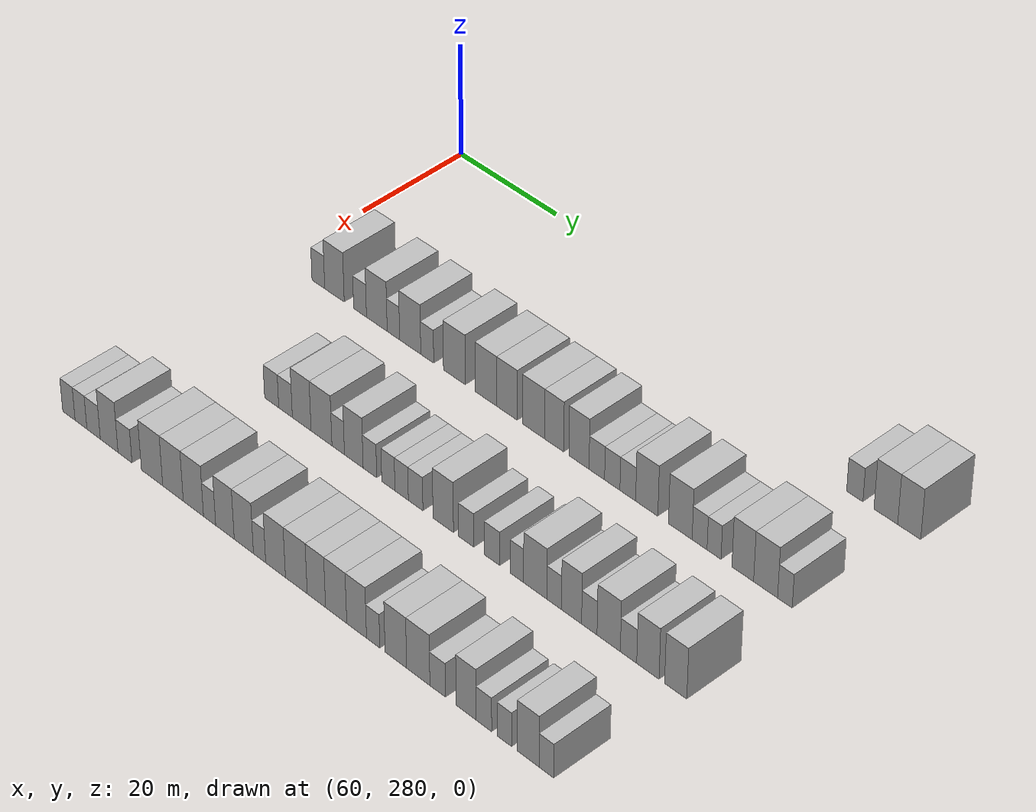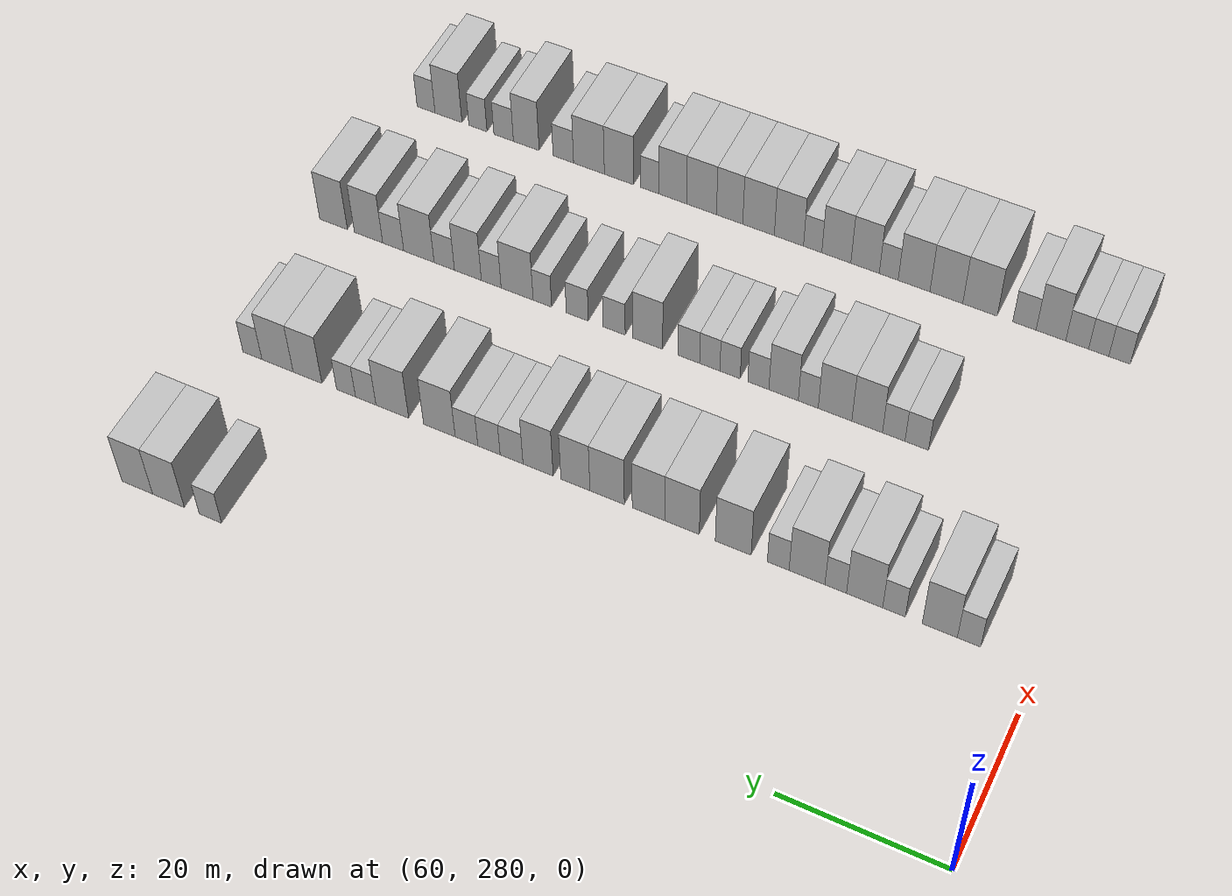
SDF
<sdf version="1.6">
 <world name="default">
  <model name="building_551">
   <static>1</static>
   <pose>69.0000 372.0880 0 0.000000 0.000000 0.000000</pose>
   <link name="link">
    <pose>0 0 3.00 0 0 0</pose>
    <collision name="collision"><geometry><box><size>10.0000 2.9733 6.0000</size></box></geometry></collision>
    <visual name="visual">
     <cast_shadows>0</cast_shadows>
     <geometry><box><size>10.0000 2.9733 6.0000</size></box></geometry>
     <material>
      <script>
       <uri>model://HANNAS_wall/materials/scripts</uri>
       <uri>model://HANNAS_wall/materials/textures</uri>
       <name>vrc/HANNAS_wall</name>
      </script>
     </material>
    </visual>
   </link>
  </model>
  <model name="building_552">
   <static>1</static>
   <pose>69.0000 377.7124 0 0.000000 0.000000 0.000000</pose>
   <link name="link">
    <pose>0 0 4.50 0 0 0</pose>
    <collision name="collision"><geometry><box><size>10.0000 4.2757 9.0000</size></box></geometry></collision>
    <visual name="visual">
     <cast_shadows>0</cast_shadows>
     <geometry><box><size>10.0000 4.2757 9.0000</size></box></geometry>
     <material>
      <script>
       <uri>model://HANNAS_wall/materials/scripts</uri>
       <uri>model://HANNAS_wall/materials/textures</uri>
       <name>vrc/HANNAS_wall</name>
      </script>
     </material>
    </visual>
   </link>
  </model>
  <model name="building_553">
   <static>1</static>
   <pose>69.0000 381.9163 0 0.000000 0.000000 0.000000</pose>
   <link name="link">
    <pose>0 0 4.50 0 0 0</pose>
    <collision name="collision"><geometry><box><size>10.0000 4.1320 9.0000</size></box></geometry></collision>
    <visual name="visual">
     <cast_shadows>0</cast_shadows>
     <geometry><box><size>10.0000 4.1320 9.0000</size></box></geometry>
     <material>
      <script>
       <uri>model://HANNAS_wall/materials/scripts</uri>
       <uri>model://HANNAS_wall/materials/textures</uri>
       <name>vrc/HANNAS_wall</name>
      </script>
     </material>
    </visual>
   </link>
  </model>
  <model name="building_720">
   <static>1</static>
   <pose>91.0000 288.1086 0 0.000000 0.000000 0.000000</pose>
   <link name="link">
    <pose>0 0 3.00 0 0 0</pose>
    <collision name="collision"><geometry><box><size>10.0000 2.7435 6.0000</size></box></geometry></collision>
    <visual name="visual">
     <cast_shadows>0</cast_shadows>
     <geometry><box><size>10.0000 2.7435 6.0000</size></box></geometry>
     <material>
      <script>
       <uri>model://HANNAS_wall/materials/scripts</uri>
       <uri>model://HANNAS_wall/materials/textures</uri>
       <name>vrc/HANNAS_wall</name>
      </script>
     </material>
    </visual>
   </link>
  </model>
  <model name="building_721">
   <static>1</static>
   <pose>91.0000 291.5610 0 0.000000 0.000000 0.000000</pose>
   <link name="link">
    <pose>0 0 4.50 0 0 0</pose>
    <collision name="collision"><geometry><box><size>10.0000 4.1612 9.0000</size></box></geometry></collision>
    <visual name="visual">
     <cast_shadows>0</cast_shadows>
     <geometry><box><size>10.0000 4.1612 9.0000</size></box></geometry>
     <material>
      <script>
       <uri>model://HANNAS_wall/materials/scripts</uri>
       <uri>model://HANNAS_wall/materials/textures</uri>
       <name>vrc/HANNAS_wall</name>
      </script>
     </material>
    </visual>
   </link>
  </model>
  <model name="building_722">
   <static>1</static>
   <pose>91.0000 297.0003 0 0.000000 0.000000 0.000000</pose>
   <link name="link">
    <pose>0 0 3.00 0 0 0</pose>
    <collision name="collision"><geometry><box><size>10.0000 2.7174 6.0000</size></box></geometry></collision>
    <visual name="visual">
     <cast_shadows>0</cast_shadows>
     <geometry><box><size>10.0000 2.7174 6.0000</size></box></geometry>
     <material>
      <script>
       <uri>model://HANNAS_wall/materials/scripts</uri>
       <uri>model://HANNAS_wall/materials/textures</uri>
       <name>vrc/HANNAS_wall</name>
      </script>
     </material>
    </visual>
   </link>
  </model>
  <model name="building_723">
   <static>1</static>
   <pose>91.0000 300.5351 0 0.000000 0.000000 0.000000</pose>
   <link name="link">
    <pose>0 0 4.50 0 0 0</pose>
    <collision name="collision"><geometry><box><size>10.0000 4.3521 9.0000</size></box></geometry></collision>
    <visual name="visual">
     <cast_shadows>0</cast_shadows>
     <geometry><box><size>10.0000 4.3521 9.0000</size></box></geometry>
     <material>
      <script>
       <uri>model://HANNAS_wall/materials/scripts</uri>
       <uri>model://HANNAS_wall/materials/textures</uri>
       <name>vrc/HANNAS_wall</name>
      </script>
     </material>
    </visual>
   </link>
  </model>
  <model name="building_724">
   <static>1</static>
   <pose>91.0000 304.0148 0 0.000000 0.000000 0.000000</pose>
   <link name="link">
    <pose>0 0 3.00 0 0 0</pose>
    <collision name="collision"><geometry><box><size>10.0000 2.6072 6.0000</size></box></geometry></collision>
    <visual name="visual">
     <cast_shadows>0</cast_shadows>
     <geometry><box><size>10.0000 2.6072 6.0000</size></box></geometry>
     <material>
      <script>
       <uri>model://HANNAS_wall/materials/scripts</uri>
       <uri>model://HANNAS_wall/materials/textures</uri>
       <name>vrc/HANNAS_wall</name>
      </script>
     </material>
    </visual>
   </link>
  </model>
  <model name="building_725">
   <static>1</static>
   <pose>91.0000 307.5072 0 0.000000 0.000000 0.000000</pose>
   <link name="link">
    <pose>0 0 4.50 0 0 0</pose>
    <collision name="collision"><geometry><box><size>10.0000 4.3775 9.0000</size></box></geometry></collision>
    <visual name="visual">
     <cast_shadows>0</cast_shadows>
     <geometry><box><size>10.0000 4.3775 9.0000</size></box></geometry>
     <material>
      <script>
       <uri>model://HANNAS_wall/materials/scripts</uri>
       <uri>model://HANNAS_wall/materials/textures</uri>
       <name>vrc/HANNAS_wall</name>
      </script>
     </material>
    </visual>
   </link>
  </model>
  <model name="building_726">
   <static>1</static>
   <pose>91.0000 311.0273 0 0.000000 0.000000 0.000000</pose>
   <link name="link">
    <pose>0 0 3.00 0 0 0</pose>
    <collision name="collision"><geometry><box><size>10.0000 2.6628 6.0000</size></box></geometry></collision>
    <visual name="visual">
     <cast_shadows>0</cast_shadows>
     <geometry><box><size>10.0000 2.6628 6.0000</size></box></geometry>
     <material>
      <script>
       <uri>model://HANNAS_wall/materials/scripts</uri>
       <uri>model://HANNAS_wall/materials/textures</uri>
       <name>vrc/HANNAS_wall</name>
      </script>
     </material>
    </visual>
   </link>
  </model>
  <model name="building_727">
   <static>1</static>
   <pose>91.0000 316.5837 0 0.000000 0.000000 0.000000</pose>
   <link name="link">
    <pose>0 0 4.50 0 0 0</pose>
    <collision name="collision"><geometry><box><size>10.0000 4.4500 9.0000</size></box></geometry></collision>
    <visual name="visual">
     <cast_shadows>0</cast_shadows>
     <geometry><box><size>10.0000 4.4500 9.0000</size></box></geometry>
     <material>
      <script>
       <uri>model://HANNAS_wall/materials/scripts</uri>
       <uri>model://HANNAS_wall/materials/textures</uri>
       <name>vrc/HANNAS_wall</name>
      </script>
     </material>
    </visual>
   </link>
  </model>
  <model name="building_728">
   <static>1</static>
   <pose>91.0000 322.9837 0 0.000000 0.000000 0.000000</pose>
   <link name="link">
    <pose>0 0 4.50 0 0 0</pose>
    <collision name="collision"><geometry><box><size>10.0000 4.3500 9.0000</size></box></geometry></collision>
    <visual name="visual">
     <cast_shadows>0</cast_shadows>
     <geometry><box><size>10.0000 4.3500 9.0000</size></box></geometry>
     <material>
      <script>
       <uri>model://HANNAS_wall/materials/scripts</uri>
       <uri>model://HANNAS_wall/materials/textures</uri>
       <name>vrc/HANNAS_wall</name>
      </script>
     </material>
    </visual>
   </link>
  </model>
  <model name="building_729">
   <static>1</static>
   <pose>91.0000 327.2072 0 0.000000 0.000000 0.000000</pose>
   <link name="link">
    <pose>0 0 4.50 0 0 0</pose>
    <collision name="collision"><geometry><box><size>10.0000 4.0969 9.0000</size></box></geometry></collision>
    <visual name="visual">
     <cast_shadows>0</cast_shadows>
     <geometry><box><size>10.0000 4.0969 9.0000</size></box></geometry>
     <material>
      <script>
       <uri>model://HANNAS_wall/materials/scripts</uri>
       <uri>model://HANNAS_wall/materials/textures</uri>
       <name>vrc/HANNAS_wall</name>
      </script>
     </material>
    </visual>
   </link>
  </model>
  <model name="building_730">
   <static>1</static>
   <pose>91.0000 332.4565 0 0.000000 0.000000 0.000000</pose>
   <link name="link">
    <pose>0 0 4.50 0 0 0</pose>
    <collision name="collision"><geometry><box><size>10.0000 4.4017 9.0000</size></box></geometry></collision>
    <visual name="visual">
     <cast_shadows>0</cast_shadows>
     <geometry><box><size>10.0000 4.4017 9.0000</size></box></geometry>
     <material>
      <script>
       <uri>model://HANNAS_wall/materials/scripts</uri>
       <uri>model://HANNAS_wall/materials/textures</uri>
       <name>vrc/HANNAS_wall</name>
      </script>
     </material>
    </visual>
   </link>
  </model>
  <model name="building_731">
   <static>1</static>
   <pose>91.0000 336.5260 0 0.000000 0.000000 0.000000</pose>
   <link name="link">
    <pose>0 0 4.50 0 0 0</pose>
    <collision name="collision"><geometry><box><size>10.0000 3.7372 9.0000</size></box></geometry></collision>
    <visual name="visual">
     <cast_shadows>0</cast_shadows>
     <geometry><box><size>10.0000 3.7372 9.0000</size></box></geometry>
     <material>
      <script>
       <uri>model://HANNAS_wall/materials/scripts</uri>
       <uri>model://HANNAS_wall/materials/textures</uri>
       <name>vrc/HANNAS_wall</name>
      </script>
     </material>
    </visual>
   </link>
  </model>
  <model name="building_732">
   <static>1</static>
   <pose>91.0000 341.3567 0 0.000000 0.000000 0.000000</pose>
   <link name="link">
    <pose>0 0 4.50 0 0 0</pose>
    <collision name="collision"><geometry><box><size>10.0000 3.9242 9.0000</size></box></geometry></collision>
    <visual name="visual">
     <cast_shadows>0</cast_shadows>
     <geometry><box><size>10.0000 3.9242 9.0000</size></box></geometry>
     <material>
      <script>
       <uri>model://HANNAS_wall/materials/scripts</uri>
       <uri>model://HANNAS_wall/materials/textures</uri>
       <name>vrc/HANNAS_wall</name>
      </script>
     </material>
    </visual>
   </link>
  </model>
  <model name="building_733">
   <static>1</static>
   <pose>91.0000 344.8164 0 0.000000 0.000000 0.000000</pose>
   <link name="link">
    <pose>0 0 3.00 0 0 0</pose>
    <collision name="collision"><geometry><box><size>10.0000 2.9950 6.0000</size></box></geometry></collision>
    <visual name="visual">
     <cast_shadows>0</cast_shadows>
     <geometry><box><size>10.0000 2.9950 6.0000</size></box></geometry>
     <material>
      <script>
       <uri>model://HANNAS_wall/materials/scripts</uri>
       <uri>model://HANNAS_wall/materials/textures</uri>
       <name>vrc/HANNAS_wall</name>
      </script>
     </material>
    </visual>
   </link>
  </model>
  <model name="building_734">
   <static>1</static>
   <pose>91.0000 347.7823 0 0.000000 0.000000 0.000000</pose>
   <link name="link">
    <pose>0 0 3.00 0 0 0</pose>
    <collision name="collision"><geometry><box><size>10.0000 2.9369 6.0000</size></box></geometry></collision>
    <visual name="visual">
     <cast_shadows>0</cast_shadows>
     <geometry><box><size>10.0000 2.9369 6.0000</size></box></geometry>
     <material>
      <script>
       <uri>model://HANNAS_wall/materials/scripts</uri>
       <uri>model://HANNAS_wall/materials/textures</uri>
       <name>vrc/HANNAS_wall</name>
      </script>
     </material>
    </visual>
   </link>
  </model>
  <model name="building_735">
   <static>1</static>
   <pose>91.0000 350.7458 0 0.000000 0.000000 0.000000</pose>
   <link name="link">
    <pose>0 0 3.00 0 0 0</pose>
    <collision name="collision"><geometry><box><size>10.0000 2.9901 6.0000</size></box></geometry></collision>
    <visual name="visual">
     <cast_shadows>0</cast_shadows>
     <geometry><box><size>10.0000 2.9901 6.0000</size></box></geometry>
     <material>
      <script>
       <uri>model://HANNAS_wall/materials/scripts</uri>
       <uri>model://HANNAS_wall/materials/textures</uri>
       <name>vrc/HANNAS_wall</name>
      </script>
     </material>
    </visual>
   </link>
  </model>
  <model name="building_736">
   <static>1</static>
   <pose>91.0000 354.3429 0 0.000000 0.000000 0.000000</pose>
   <link name="link">
    <pose>0 0 4.50 0 0 0</pose>
    <collision name="collision"><geometry><box><size>10.0000 4.2041 9.0000</size></box></geometry></collision>
    <visual name="visual">
     <cast_shadows>0</cast_shadows>
     <geometry><box><size>10.0000 4.2041 9.0000</size></box></geometry>
     <material>
      <script>
       <uri>model://HANNAS_wall/materials/scripts</uri>
       <uri>model://HANNAS_wall/materials/textures</uri>
       <name>vrc/HANNAS_wall</name>
      </script>
     </material>
    </visual>
   </link>
  </model>
  <model name="building_737">
   <static>1</static>
   <pose>91.0000 360.6515 0 0.000000 0.000000 0.000000</pose>
   <link name="link">
    <pose>0 0 4.50 0 0 0</pose>
    <collision name="collision"><geometry><box><size>10.0000 4.4130 9.0000</size></box></geometry></collision>
    <visual name="visual">
     <cast_shadows>0</cast_shadows>
     <geometry><box><size>10.0000 4.4130 9.0000</size></box></geometry>
     <material>
      <script>
       <uri>model://HANNAS_wall/materials/scripts</uri>
       <uri>model://HANNAS_wall/materials/textures</uri>
       <name>vrc/HANNAS_wall</name>
      </script>
     </material>
    </visual>
   </link>
  </model>
  <model name="building_738">
   <static>1</static>
   <pose>91.0000 364.2437 0 0.000000 0.000000 0.000000</pose>
   <link name="link">
    <pose>0 0 3.00 0 0 0</pose>
    <collision name="collision"><geometry><box><size>10.0000 2.7716 6.0000</size></box></geometry></collision>
    <visual name="visual">
     <cast_shadows>0</cast_shadows>
     <geometry><box><size>10.0000 2.7716 6.0000</size></box></geometry>
     <material>
      <script>
       <uri>model://HANNAS_wall/materials/scripts</uri>
       <uri>model://HANNAS_wall/materials/textures</uri>
       <name>vrc/HANNAS_wall</name>
      </script>
     </material>
    </visual>
   </link>
  </model>
  <model name="building_739">
   <static>1</static>
   <pose>91.0000 366.9159 0 0.000000 0.000000 0.000000</pose>
   <link name="link">
    <pose>0 0 3.00 0 0 0</pose>
    <collision name="collision"><geometry><box><size>10.0000 2.5727 6.0000</size></box></geometry></collision>
    <visual name="visual">
     <cast_shadows>0</cast_shadows>
     <geometry><box><size>10.0000 2.5727 6.0000</size></box></geometry>
     <material>
      <script>
       <uri>model://HANNAS_wall/materials/scripts</uri>
       <uri>model://HANNAS_wall/materials/textures</uri>
       <name>vrc/HANNAS_wall</name>
      </script>
     </material>
    </visual>
   </link>
  </model>
  <model name="building_740">
   <static>1</static>
   <pose>91.0000 372.1817 0 0.000000 0.000000 0.000000</pose>
   <link name="link">
    <pose>0 0 4.50 0 0 0</pose>
    <collision name="collision"><geometry><box><size>10.0000 3.9588 9.0000</size></box></geometry></collision>
    <visual name="visual">
     <cast_shadows>0</cast_shadows>
     <geometry><box><size>10.0000 3.9588 9.0000</size></box></geometry>
     <material>
      <script>
       <uri>model://HANNAS_wall/materials/scripts</uri>
       <uri>model://HANNAS_wall/materials/textures</uri>
       <name>vrc/HANNAS_wall</name>
      </script>
     </material>
    </visual>
   </link>
  </model>
  <model name="building_741">
   <static>1</static>
   <pose>91.0000 376.3305 0 0.000000 0.000000 0.000000</pose>
   <link name="link">
    <pose>0 0 4.50 0 0 0</pose>
    <collision name="collision"><geometry><box><size>10.0000 4.3389 9.0000</size></box></geometry></collision>
    <visual name="visual">
     <cast_shadows>0</cast_shadows>
     <geometry><box><size>10.0000 4.3389 9.0000</size></box></geometry>
     <material>
      <script>
       <uri>model://HANNAS_wall/materials/scripts</uri>
       <uri>model://HANNAS_wall/materials/textures</uri>
       <name>vrc/HANNAS_wall</name>
      </script>
     </material>
    </visual>
   </link>
  </model>
  <model name="building_742">
   <static>1</static>
   <pose>91.0000 379.8189 0 0.000000 0.000000 0.000000</pose>
   <link name="link">
    <pose>0 0 3.00 0 0 0</pose>
    <collision name="collision"><geometry><box><size>10.0000 2.6379 6.0000</size></box></geometry></collision>
    <visual name="visual">
     <cast_shadows>0</cast_shadows>
     <geometry><box><size>10.0000 2.6379 6.0000</size></box></geometry>
     <material>
      <script>
       <uri>model://HANNAS_wall/materials/scripts</uri>
       <uri>model://HANNAS_wall/materials/textures</uri>
       <name>vrc/HANNAS_wall</name>
      </script>
     </material>
    </visual>
   </link>
  </model>
  <model name="building_910">
   <static>1</static>
   <pose>113.0000 303.0188 0 0.000000 0.000000 0.000000</pose>
   <link name="link">
    <pose>0 0 3.00 0 0 0</pose>
    <collision name="collision"><geometry><box><size>10.0000 2.9474 6.0000</size></box></geometry></collision>
    <visual name="visual">
     <cast_shadows>0</cast_shadows>
     <geometry><box><size>10.0000 2.9474 6.0000</size></box></geometry>
     <material>
      <script>
       <uri>model://HANNAS_wall/materials/scripts</uri>
       <uri>model://HANNAS_wall/materials/textures</uri>
       <name>vrc/HANNAS_wall</name>
      </script>
     </material>
    </visual>
   </link>
  </model>
  <model name="building_911">
   <static>1</static>
   <pose>113.0000 305.9143 0 0.000000 0.000000 0.000000</pose>
   <link name="link">
    <pose>0 0 3.00 0 0 0</pose>
    <collision name="collision"><geometry><box><size>10.0000 2.8436 6.0000</size></box></geometry></collision>
    <visual name="visual">
     <cast_shadows>0</cast_shadows>
     <geometry><box><size>10.0000 2.8436 6.0000</size></box></geometry>
     <material>
      <script>
       <uri>model://HANNAS_wall/materials/scripts</uri>
       <uri>model://HANNAS_wall/materials/textures</uri>
       <name>vrc/HANNAS_wall</name>
      </script>
     </material>
    </visual>
   </link>
  </model>
  <model name="building_912">
   <static>1</static>
   <pose>113.0000 309.2761 0 0.000000 0.000000 0.000000</pose>
   <link name="link">
    <pose>0 0 4.50 0 0 0</pose>
    <collision name="collision"><geometry><box><size>10.0000 3.8799 9.0000</size></box></geometry></collision>
    <visual name="visual">
     <cast_shadows>0</cast_shadows>
     <geometry><box><size>10.0000 3.8799 9.0000</size></box></geometry>
     <material>
      <script>
       <uri>model://HANNAS_wall/materials/scripts</uri>
       <uri>model://HANNAS_wall/materials/textures</uri>
       <name>vrc/HANNAS_wall</name>
      </script>
     </material>
    </visual>
   </link>
  </model>
  <model name="building_913">
   <static>1</static>
   <pose>113.0000 313.3611 0 0.000000 0.000000 0.000000</pose>
   <link name="link">
    <pose>0 0 4.50 0 0 0</pose>
    <collision name="collision"><geometry><box><size>10.0000 4.2902 9.0000</size></box></geometry></collision>
    <visual name="visual">
     <cast_shadows>0</cast_shadows>
     <geometry><box><size>10.0000 4.2902 9.0000</size></box></geometry>
     <material>
      <script>
       <uri>model://HANNAS_wall/materials/scripts</uri>
       <uri>model://HANNAS_wall/materials/textures</uri>
       <name>vrc/HANNAS_wall</name>
      </script>
     </material>
    </visual>
   </link>
  </model>
  <model name="building_914">
   <static>1</static>
   <pose>113.0000 316.7859 0 0.000000 0.000000 0.000000</pose>
   <link name="link">
    <pose>0 0 3.00 0 0 0</pose>
    <collision name="collision"><geometry><box><size>10.0000 2.5594 6.0000</size></box></geometry></collision>
    <visual name="visual">
     <cast_shadows>0</cast_shadows>
     <geometry><box><size>10.0000 2.5594 6.0000</size></box></geometry>
     <material>
      <script>
       <uri>model://HANNAS_wall/materials/scripts</uri>
       <uri>model://HANNAS_wall/materials/textures</uri>
       <name>vrc/HANNAS_wall</name>
      </script>
     </material>
    </visual>
   </link>
  </model>
  <model name="building_915">
   <static>1</static>
   <pose>113.0000 319.9630 0 0.000000 0.000000 0.000000</pose>
   <link name="link">
    <pose>0 0 4.50 0 0 0</pose>
    <collision name="collision"><geometry><box><size>10.0000 3.7948 9.0000</size></box></geometry></collision>
    <visual name="visual">
     <cast_shadows>0</cast_shadows>
     <geometry><box><size>10.0000 3.7948 9.0000</size></box></geometry>
     <material>
      <script>
       <uri>model://HANNAS_wall/materials/scripts</uri>
       <uri>model://HANNAS_wall/materials/textures</uri>
       <name>vrc/HANNAS_wall</name>
      </script>
     </material>
    </visual>
   </link>
  </model>
  <model name="building_916">
   <static>1</static>
   <pose>113.0000 323.2303 0 0.000000 0.000000 0.000000</pose>
   <link name="link">
    <pose>0 0 3.00 0 0 0</pose>
    <collision name="collision"><geometry><box><size>10.0000 2.7396 6.0000</size></box></geometry></collision>
    <visual name="visual">
     <cast_shadows>0</cast_shadows>
     <geometry><box><size>10.0000 2.7396 6.0000</size></box></geometry>
     <material>
      <script>
       <uri>model://HANNAS_wall/materials/scripts</uri>
       <uri>model://HANNAS_wall/materials/textures</uri>
       <name>vrc/HANNAS_wall</name>
      </script>
     </material>
    </visual>
   </link>
  </model>
  <model name="building_917">
   <static>1</static>
   <pose>113.0000 326.9253 0 0.000000 0.000000 0.000000</pose>
   <link name="link">
    <pose>0 0 3.00 0 0 0</pose>
    <collision name="collision"><geometry><box><size>10.0000 2.6505 6.0000</size></box></geometry></collision>
    <visual name="visual">
     <cast_shadows>0</cast_shadows>
     <geometry><box><size>10.0000 2.6505 6.0000</size></box></geometry>
     <material>
      <script>
       <uri>model://HANNAS_wall/materials/scripts</uri>
       <uri>model://HANNAS_wall/materials/textures</uri>
       <name>vrc/HANNAS_wall</name>
      </script>
     </material>
    </visual>
   </link>
  </model>
  <model name="building_918">
   <static>1</static>
   <pose>113.0000 329.5850 0 0.000000 0.000000 0.000000</pose>
   <link name="link">
    <pose>0 0 3.00 0 0 0</pose>
    <collision name="collision"><geometry><box><size>10.0000 2.6688 6.0000</size></box></geometry></collision>
    <visual name="visual">
     <cast_shadows>0</cast_shadows>
     <geometry><box><size>10.0000 2.6688 6.0000</size></box></geometry>
     <material>
      <script>
       <uri>model://HANNAS_wall/materials/scripts</uri>
       <uri>model://HANNAS_wall/materials/textures</uri>
       <name>vrc/HANNAS_wall</name>
      </script>
     </material>
    </visual>
   </link>
  </model>
  <model name="building_919">
   <static>1</static>
   <pose>113.0000 332.3602 0 0.000000 0.000000 0.000000</pose>
   <link name="link">
    <pose>0 0 3.00 0 0 0</pose>
    <collision name="collision"><geometry><box><size>10.0000 2.8817 6.0000</size></box></geometry></collision>
    <visual name="visual">
     <cast_shadows>0</cast_shadows>
     <geometry><box><size>10.0000 2.8817 6.0000</size></box></geometry>
     <material>
      <script>
       <uri>model://HANNAS_wall/materials/scripts</uri>
       <uri>model://HANNAS_wall/materials/textures</uri>
       <name>vrc/HANNAS_wall</name>
      </script>
     </material>
    </visual>
   </link>
  </model>
  <model name="building_920">
   <static>1</static>
   <pose>113.0000 337.8000 0 0.000000 0.000000 0.000000</pose>
   <link name="link">
    <pose>0 0 4.50 0 0 0</pose>
    <collision name="collision"><geometry><box><size>10.0000 3.9978 9.0000</size></box></geometry></collision>
    <visual name="visual">
     <cast_shadows>0</cast_shadows>
     <geometry><box><size>10.0000 3.9978 9.0000</size></box></geometry>
     <material>
      <script>
       <uri>model://HANNAS_wall/materials/scripts</uri>
       <uri>model://HANNAS_wall/materials/textures</uri>
       <name>vrc/HANNAS_wall</name>
      </script>
     </material>
    </visual>
   </link>
  </model>
  <model name="building_921">
   <static>1</static>
   <pose>113.0000 342.2810 0 0.000000 0.000000 0.000000</pose>
   <link name="link">
    <pose>0 0 3.00 0 0 0</pose>
    <collision name="collision"><geometry><box><size>10.0000 2.9643 6.0000</size></box></geometry></collision>
    <visual name="visual">
     <cast_shadows>0</cast_shadows>
     <geometry><box><size>10.0000 2.9643 6.0000</size></box></geometry>
     <material>
      <script>
       <uri>model://HANNAS_wall/materials/scripts</uri>
       <uri>model://HANNAS_wall/materials/textures</uri>
       <name>vrc/HANNAS_wall</name>
      </script>
     </material>
    </visual>
   </link>
  </model>
  <model name="building_922">
   <static>1</static>
   <pose>113.0000 347.2578 0 0.000000 0.000000 0.000000</pose>
   <link name="link">
    <pose>0 0 3.00 0 0 0</pose>
    <collision name="collision"><geometry><box><size>10.0000 2.9893 6.0000</size></box></geometry></collision>
    <visual name="visual">
     <cast_shadows>0</cast_shadows>
     <geometry><box><size>10.0000 2.9893 6.0000</size></box></geometry>
     <material>
      <script>
       <uri>model://HANNAS_wall/materials/scripts</uri>
       <uri>model://HANNAS_wall/materials/textures</uri>
       <name>vrc/HANNAS_wall</name>
      </script>
     </material>
    </visual>
   </link>
  </model>
  <model name="building_923">
   <static>1</static>
   <pose>113.0000 352.0212 0 0.000000 0.000000 0.000000</pose>
   <link name="link">
    <pose>0 0 3.00 0 0 0</pose>
    <collision name="collision"><geometry><box><size>10.0000 2.5376 6.0000</size></box></geometry></collision>
    <visual name="visual">
     <cast_shadows>0</cast_shadows>
     <geometry><box><size>10.0000 2.5376 6.0000</size></box></geometry>
     <material>
      <script>
       <uri>model://HANNAS_wall/materials/scripts</uri>
       <uri>model://HANNAS_wall/materials/textures</uri>
       <name>vrc/HANNAS_wall</name>
      </script>
     </material>
    </visual>
   </link>
  </model>
  <model name="building_924">
   <static>1</static>
   <pose>113.0000 355.4931 0 0.000000 0.000000 0.000000</pose>
   <link name="link">
    <pose>0 0 4.50 0 0 0</pose>
    <collision name="collision"><geometry><box><size>10.0000 4.4061 9.0000</size></box></geometry></collision>
    <visual name="visual">
     <cast_shadows>0</cast_shadows>
     <geometry><box><size>10.0000 4.4061 9.0000</size></box></geometry>
     <material>
      <script>
       <uri>model://HANNAS_wall/materials/scripts</uri>
       <uri>model://HANNAS_wall/materials/textures</uri>
       <name>vrc/HANNAS_wall</name>
      </script>
     </material>
    </visual>
   </link>
  </model>
  <model name="building_925">
   <static>1</static>
   <pose>113.0000 359.0608 0 0.000000 0.000000 0.000000</pose>
   <link name="link">
    <pose>0 0 3.00 0 0 0</pose>
    <collision name="collision"><geometry><box><size>10.0000 2.7293 6.0000</size></box></geometry></collision>
    <visual name="visual">
     <cast_shadows>0</cast_shadows>
     <geometry><box><size>10.0000 2.7293 6.0000</size></box></geometry>
     <material>
      <script>
       <uri>model://HANNAS_wall/materials/scripts</uri>
       <uri>model://HANNAS_wall/materials/textures</uri>
       <name>vrc/HANNAS_wall</name>
      </script>
     </material>
    </visual>
   </link>
  </model>
  <model name="building_926">
   <static>1</static>
   <pose>113.0000 362.2991 0 0.000000 0.000000 0.000000</pose>
   <link name="link">
    <pose>0 0 4.50 0 0 0</pose>
    <collision name="collision"><geometry><box><size>10.0000 3.7473 9.0000</size></box></geometry></collision>
    <visual name="visual">
     <cast_shadows>0</cast_shadows>
     <geometry><box><size>10.0000 3.7473 9.0000</size></box></geometry>
     <material>
      <script>
       <uri>model://HANNAS_wall/materials/scripts</uri>
       <uri>model://HANNAS_wall/materials/textures</uri>
       <name>vrc/HANNAS_wall</name>
      </script>
     </material>
    </visual>
   </link>
  </model>
  <model name="building_927">
   <static>1</static>
   <pose>113.0000 365.5994 0 0.000000 0.000000 0.000000</pose>
   <link name="link">
    <pose>0 0 3.00 0 0 0</pose>
    <collision name="collision"><geometry><box><size>10.0000 2.8533 6.0000</size></box></geometry></collision>
    <visual name="visual">
     <cast_shadows>0</cast_shadows>
     <geometry><box><size>10.0000 2.8533 6.0000</size></box></geometry>
     <material>
      <script>
       <uri>model://HANNAS_wall/materials/scripts</uri>
       <uri>model://HANNAS_wall/materials/textures</uri>
       <name>vrc/HANNAS_wall</name>
      </script>
     </material>
    </visual>
   </link>
  </model>
  <model name="building_928">
   <static>1</static>
   <pose>113.0000 369.1701 0 0.000000 0.000000 0.000000</pose>
   <link name="link">
    <pose>0 0 4.50 0 0 0</pose>
    <collision name="collision"><geometry><box><size>10.0000 4.2882 9.0000</size></box></geometry></collision>
    <visual name="visual">
     <cast_shadows>0</cast_shadows>
     <geometry><box><size>10.0000 4.2882 9.0000</size></box></geometry>
     <material>
      <script>
       <uri>model://HANNAS_wall/materials/scripts</uri>
       <uri>model://HANNAS_wall/materials/textures</uri>
       <name>vrc/HANNAS_wall</name>
      </script>
     </material>
    </visual>
   </link>
  </model>
  <model name="building_929">
   <static>1</static>
   <pose>113.0000 372.8045 0 0.000000 0.000000 0.000000</pose>
   <link name="link">
    <pose>0 0 3.00 0 0 0</pose>
    <collision name="collision"><geometry><box><size>10.0000 2.9806 6.0000</size></box></geometry></collision>
    <visual name="visual">
     <cast_shadows>0</cast_shadows>
     <geometry><box><size>10.0000 2.9806 6.0000</size></box></geometry>
     <material>
      <script>
       <uri>model://HANNAS_wall/materials/scripts</uri>
       <uri>model://HANNAS_wall/materials/textures</uri>
       <name>vrc/HANNAS_wall</name>
      </script>
     </material>
    </visual>
   </link>
  </model>
  <model name="building_930">
   <static>1</static>
   <pose>113.0000 376.3161 0 0.000000 0.000000 0.000000</pose>
   <link name="link">
    <pose>0 0 4.50 0 0 0</pose>
    <collision name="collision"><geometry><box><size>10.0000 4.0425 9.0000</size></box></geometry></collision>
    <visual name="visual">
     <cast_shadows>0</cast_shadows>
     <geometry><box><size>10.0000 4.0425 9.0000</size></box></geometry>
     <material>
      <script>
       <uri>model://HANNAS_wall/materials/scripts</uri>
       <uri>model://HANNAS_wall/materials/textures</uri>
       <name>vrc/HANNAS_wall</name>
      </script>
     </material>
    </visual>
   </link>
  </model>
  <model name="building_931">
   <static>1</static>
   <pose>113.0000 381.3252 0 0.000000 0.000000 0.000000</pose>
   <link name="link">
    <pose>0 0 4.50 0 0 0</pose>
    <collision name="collision"><geometry><box><size>10.0000 3.9758 9.0000</size></box></geometry></collision>
    <visual name="visual">
     <cast_shadows>0</cast_shadows>
     <geometry><box><size>10.0000 3.9758 9.0000</size></box></geometry>
     <material>
      <script>
       <uri>model://HANNAS_wall/materials/scripts</uri>
       <uri>model://HANNAS_wall/materials/textures</uri>
       <name>vrc/HANNAS_wall</name>
      </script>
     </material>
    </visual>
   </link>
  </model>
  <model name="building_1090">
   <static>1</static>
   <pose>135.0000 285.6781 0 0.000000 0.000000 0.000000</pose>
   <link name="link">
    <pose>0 0 3.00 0 0 0</pose>
    <collision name="collision"><geometry><box><size>10.0000 2.6960 6.0000</size></box></geometry></collision>
    <visual name="visual">
     <cast_shadows>0</cast_shadows>
     <geometry><box><size>10.0000 2.6960 6.0000</size></box></geometry>
     <material>
      <script>
       <uri>model://HANNAS_wall/materials/scripts</uri>
       <uri>model://HANNAS_wall/materials/textures</uri>
       <name>vrc/HANNAS_wall</name>
      </script>
     </material>
    </visual>
   </link>
  </model>
  <model name="building_1091">
   <static>1</static>
   <pose>135.0000 288.3065 0 0.000000 0.000000 0.000000</pose>
   <link name="link">
    <pose>0 0 3.00 0 0 0</pose>
    <collision name="collision"><geometry><box><size>10.0000 2.5607 6.0000</size></box></geometry></collision>
    <visual name="visual">
     <cast_shadows>0</cast_shadows>
     <geometry><box><size>10.0000 2.5607 6.0000</size></box></geometry>
     <material>
      <script>
       <uri>model://HANNAS_wall/materials/scripts</uri>
       <uri>model://HANNAS_wall/materials/textures</uri>
       <name>vrc/HANNAS_wall</name>
      </script>
     </material>
    </visual>
   </link>
  </model>
  <model name="building_1092">
   <static>1</static>
   <pose>135.0000 291.0343 0 0.000000 0.000000 0.000000</pose>
   <link name="link">
    <pose>0 0 3.00 0 0 0</pose>
    <collision name="collision"><geometry><box><size>10.0000 2.8949 6.0000</size></box></geometry></collision>
    <visual name="visual">
     <cast_shadows>0</cast_shadows>
     <geometry><box><size>10.0000 2.8949 6.0000</size></box></geometry>
     <material>
      <script>
       <uri>model://HANNAS_wall/materials/scripts</uri>
       <uri>model://HANNAS_wall/materials/textures</uri>
       <name>vrc/HANNAS_wall</name>
      </script>
     </material>
    </visual>
   </link>
  </model>
  <model name="building_1093">
   <static>1</static>
   <pose>135.0000 294.3743 0 0.000000 0.000000 0.000000</pose>
   <link name="link">
    <pose>0 0 4.50 0 0 0</pose>
    <collision name="collision"><geometry><box><size>10.0000 3.7852 9.0000</size></box></geometry></collision>
    <visual name="visual">
     <cast_shadows>0</cast_shadows>
     <geometry><box><size>10.0000 3.7852 9.0000</size></box></geometry>
     <material>
      <script>
       <uri>model://HANNAS_wall/materials/scripts</uri>
       <uri>model://HANNAS_wall/materials/textures</uri>
       <name>vrc/HANNAS_wall</name>
      </script>
     </material>
    </visual>
   </link>
  </model>
  <model name="building_1094">
   <static>1</static>
   <pose>135.0000 297.7594 0 0.000000 0.000000 0.000000</pose>
   <link name="link">
    <pose>0 0 3.00 0 0 0</pose>
    <collision name="collision"><geometry><box><size>10.0000 2.9850 6.0000</size></box></geometry></collision>
    <visual name="visual">
     <cast_shadows>0</cast_shadows>
     <geometry><box><size>10.0000 2.9850 6.0000</size></box></geometry>
     <material>
      <script>
       <uri>model://HANNAS_wall/materials/scripts</uri>
       <uri>model://HANNAS_wall/materials/textures</uri>
       <name>vrc/HANNAS_wall</name>
      </script>
     </material>
    </visual>
   </link>
  </model>
  <model name="building_1095">
   <static>1</static>
   <pose>135.0000 303.4921 0 0.000000 0.000000 0.000000</pose>
   <link name="link">
    <pose>0 0 4.50 0 0 0</pose>
    <collision name="collision"><geometry><box><size>10.0000 4.4803 9.0000</size></box></geometry></collision>
    <visual name="visual">
     <cast_shadows>0</cast_shadows>
     <geometry><box><size>10.0000 4.4803 9.0000</size></box></geometry>
     <material>
      <script>
       <uri>model://HANNAS_wall/materials/scripts</uri>
       <uri>model://HANNAS_wall/materials/textures</uri>
       <name>vrc/HANNAS_wall</name>
      </script>
     </material>
    </visual>
   </link>
  </model>
  <model name="building_1096">
   <static>1</static>
   <pose>135.0000 307.8776 0 0.000000 0.000000 0.000000</pose>
   <link name="link">
    <pose>0 0 4.50 0 0 0</pose>
    <collision name="collision"><geometry><box><size>10.0000 4.2907 9.0000</size></box></geometry></collision>
    <visual name="visual">
     <cast_shadows>0</cast_shadows>
     <geometry><box><size>10.0000 4.2907 9.0000</size></box></geometry>
     <material>
      <script>
       <uri>model://HANNAS_wall/materials/scripts</uri>
       <uri>model://HANNAS_wall/materials/textures</uri>
       <name>vrc/HANNAS_wall</name>
      </script>
     </material>
    </visual>
   </link>
  </model>
  <model name="building_1097">
   <static>1</static>
   <pose>135.0000 312.1164 0 0.000000 0.000000 0.000000</pose>
   <link name="link">
    <pose>0 0 4.50 0 0 0</pose>
    <collision name="collision"><geometry><box><size>10.0000 4.1867 9.0000</size></box></geometry></collision>
    <visual name="visual">
     <cast_shadows>0</cast_shadows>
     <geometry><box><size>10.0000 4.1867 9.0000</size></box></geometry>
     <material>
      <script>
       <uri>model://HANNAS_wall/materials/scripts</uri>
       <uri>model://HANNAS_wall/materials/textures</uri>
       <name>vrc/HANNAS_wall</name>
      </script>
     </material>
    </visual>
   </link>
  </model>
  <model name="building_1098">
   <static>1</static>
   <pose>135.0000 315.4607 0 0.000000 0.000000 0.000000</pose>
   <link name="link">
    <pose>0 0 3.00 0 0 0</pose>
    <collision name="collision"><geometry><box><size>10.0000 2.5020 6.0000</size></box></geometry></collision>
    <visual name="visual">
     <cast_shadows>0</cast_shadows>
     <geometry><box><size>10.0000 2.5020 6.0000</size></box></geometry>
     <material>
      <script>
       <uri>model://HANNAS_wall/materials/scripts</uri>
       <uri>model://HANNAS_wall/materials/textures</uri>
       <name>vrc/HANNAS_wall</name>
      </script>
     </material>
    </visual>
   </link>
  </model>
  <model name="building_1099">
   <static>1</static>
   <pose>135.0000 318.6043 0 0.000000 0.000000 0.000000</pose>
   <link name="link">
    <pose>0 0 4.50 0 0 0</pose>
    <collision name="collision"><geometry><box><size>10.0000 3.7852 9.0000</size></box></geometry></collision>
    <visual name="visual">
     <cast_shadows>0</cast_shadows>
     <geometry><box><size>10.0000 3.7852 9.0000</size></box></geometry>
     <material>
      <script>
       <uri>model://HANNAS_wall/materials/scripts</uri>
       <uri>model://HANNAS_wall/materials/textures</uri>
       <name>vrc/HANNAS_wall</name>
      </script>
     </material>
    </visual>
   </link>
  </model>
  <model name="building_1100">
   <static>1</static>
   <pose>135.0000 322.4432 0 0.000000 0.000000 0.000000</pose>
   <link name="link">
    <pose>0 0 4.50 0 0 0</pose>
    <collision name="collision"><geometry><box><size>10.0000 3.8926 9.0000</size></box></geometry></collision>
    <visual name="visual">
     <cast_shadows>0</cast_shadows>
     <geometry><box><size>10.0000 3.8926 9.0000</size></box></geometry>
     <material>
      <script>
       <uri>model://HANNAS_wall/materials/scripts</uri>
       <uri>model://HANNAS_wall/materials/textures</uri>
       <name>vrc/HANNAS_wall</name>
      </script>
     </material>
    </visual>
   </link>
  </model>
  <model name="building_1101">
   <static>1</static>
   <pose>135.0000 325.6242 0 0.000000 0.000000 0.000000</pose>
   <link name="link">
    <pose>0 0 3.00 0 0 0</pose>
    <collision name="collision"><geometry><box><size>10.0000 2.4693 6.0000</size></box></geometry></collision>
    <visual name="visual">
     <cast_shadows>0</cast_shadows>
     <geometry><box><size>10.0000 2.4693 6.0000</size></box></geometry>
     <material>
      <script>
       <uri>model://HANNAS_wall/materials/scripts</uri>
       <uri>model://HANNAS_wall/materials/textures</uri>
       <name>vrc/HANNAS_wall</name>
      </script>
     </material>
    </visual>
   </link>
  </model>
  <model name="building_1102">
   <static>1</static>
   <pose>135.0000 328.8370 0 0.000000 0.000000 0.000000</pose>
   <link name="link">
    <pose>0 0 4.50 0 0 0</pose>
    <collision name="collision"><geometry><box><size>10.0000 3.9564 9.0000</size></box></geometry></collision>
    <visual name="visual">
     <cast_shadows>0</cast_shadows>
     <geometry><box><size>10.0000 3.9564 9.0000</size></box></geometry>
     <material>
      <script>
       <uri>model://HANNAS_wall/materials/scripts</uri>
       <uri>model://HANNAS_wall/materials/textures</uri>
       <name>vrc/HANNAS_wall</name>
      </script>
     </material>
    </visual>
   </link>
  </model>
  <model name="building_1103">
   <static>1</static>
   <pose>135.0000 332.9744 0 0.000000 0.000000 0.000000</pose>
   <link name="link">
    <pose>0 0 4.50 0 0 0</pose>
    <collision name="collision"><geometry><box><size>10.0000 4.3182 9.0000</size></box></geometry></collision>
    <visual name="visual">
     <cast_shadows>0</cast_shadows>
     <geometry><box><size>10.0000 4.3182 9.0000</size></box></geometry>
     <material>
      <script>
       <uri>model://HANNAS_wall/materials/scripts</uri>
       <uri>model://HANNAS_wall/materials/textures</uri>
       <name>vrc/HANNAS_wall</name>
      </script>
     </material>
    </visual>
   </link>
  </model>
  <model name="building_1104">
   <static>1</static>
   <pose>135.0000 336.9423 0 0.000000 0.000000 0.000000</pose>
   <link name="link">
    <pose>0 0 4.50 0 0 0</pose>
    <collision name="collision"><geometry><box><size>10.0000 3.6177 9.0000</size></box></geometry></collision>
    <visual name="visual">
     <cast_shadows>0</cast_shadows>
     <geometry><box><size>10.0000 3.6177 9.0000</size></box></geometry>
     <material>
      <script>
       <uri>model://HANNAS_wall/materials/scripts</uri>
       <uri>model://HANNAS_wall/materials/textures</uri>
       <name>vrc/HANNAS_wall</name>
      </script>
     </material>
    </visual>
   </link>
  </model>
  <model name="building_1105">
   <static>1</static>
   <pose>135.0000 340.8167 0 0.000000 0.000000 0.000000</pose>
   <link name="link">
    <pose>0 0 4.50 0 0 0</pose>
    <collision name="collision"><geometry><box><size>10.0000 4.1311 9.0000</size></box></geometry></collision>
    <visual name="visual">
     <cast_shadows>0</cast_shadows>
     <geometry><box><size>10.0000 4.1311 9.0000</size></box></geometry>
     <material>
      <script>
       <uri>model://HANNAS_wall/materials/scripts</uri>
       <uri>model://HANNAS_wall/materials/textures</uri>
       <name>vrc/HANNAS_wall</name>
      </script>
     </material>
    </visual>
   </link>
  </model>
  <model name="building_1106">
   <static>1</static>
   <pose>135.0000 344.7953 0 0.000000 0.000000 0.000000</pose>
   <link name="link">
    <pose>0 0 4.50 0 0 0</pose>
    <collision name="collision"><geometry><box><size>10.0000 3.8260 9.0000</size></box></geometry></collision>
    <visual name="visual">
     <cast_shadows>0</cast_shadows>
     <geometry><box><size>10.0000 3.8260 9.0000</size></box></geometry>
     <material>
      <script>
       <uri>model://HANNAS_wall/materials/scripts</uri>
       <uri>model://HANNAS_wall/materials/textures</uri>
       <name>vrc/HANNAS_wall</name>
      </script>
     </material>
    </visual>
   </link>
  </model>
  <model name="building_1107">
   <static>1</static>
   <pose>135.0000 347.9939 0 0.000000 0.000000 0.000000</pose>
   <link name="link">
    <pose>0 0 3.00 0 0 0</pose>
    <collision name="collision"><geometry><box><size>10.0000 2.5713 6.0000</size></box></geometry></collision>
    <visual name="visual">
     <cast_shadows>0</cast_shadows>
     <geometry><box><size>10.0000 2.5713 6.0000</size></box></geometry>
     <material>
      <script>
       <uri>model://HANNAS_wall/materials/scripts</uri>
       <uri>model://HANNAS_wall/materials/textures</uri>
       <name>vrc/HANNAS_wall</name>
      </script>
     </material>
    </visual>
   </link>
  </model>
  <model name="building_1108">
   <static>1</static>
   <pose>135.0000 352.3383 0 0.000000 0.000000 0.000000</pose>
   <link name="link">
    <pose>0 0 4.50 0 0 0</pose>
    <collision name="collision"><geometry><box><size>10.0000 4.1174 9.0000</size></box></geometry></collision>
    <visual name="visual">
     <cast_shadows>0</cast_shadows>
     <geometry><box><size>10.0000 4.1174 9.0000</size></box></geometry>
     <material>
      <script>
       <uri>model://HANNAS_wall/materials/scripts</uri>
       <uri>model://HANNAS_wall/materials/textures</uri>
       <name>vrc/HANNAS_wall</name>
      </script>
     </material>
    </visual>
   </link>
  </model>
  <model name="building_1109">
   <static>1</static>
   <pose>135.0000 356.5878 0 0.000000 0.000000 0.000000</pose>
   <link name="link">
    <pose>0 0 4.50 0 0 0</pose>
    <collision name="collision"><geometry><box><size>10.0000 4.3816 9.0000</size></box></geometry></collision>
    <visual name="visual">
     <cast_shadows>0</cast_shadows>
     <geometry><box><size>10.0000 4.3816 9.0000</size></box></geometry>
     <material>
      <script>
       <uri>model://HANNAS_wall/materials/scripts</uri>
       <uri>model://HANNAS_wall/materials/textures</uri>
       <name>vrc/HANNAS_wall</name>
      </script>
     </material>
    </visual>
   </link>
  </model>
  <model name="building_1110">
   <static>1</static>
   <pose>135.0000 360.2407 0 0.000000 0.000000 0.000000</pose>
   <link name="link">
    <pose>0 0 3.00 0 0 0</pose>
    <collision name="collision"><geometry><box><size>10.0000 2.9242 6.0000</size></box></geometry></collision>
    <visual name="visual">
     <cast_shadows>0</cast_shadows>
     <geometry><box><size>10.0000 2.9242 6.0000</size></box></geometry>
     <material>
      <script>
       <uri>model://HANNAS_wall/materials/scripts</uri>
       <uri>model://HANNAS_wall/materials/textures</uri>
       <name>vrc/HANNAS_wall</name>
      </script>
     </material>
    </visual>
   </link>
  </model>
  <model name="building_1111">
   <static>1</static>
   <pose>135.0000 365.5629 0 0.000000 0.000000 0.000000</pose>
   <link name="link">
    <pose>0 0 4.50 0 0 0</pose>
    <collision name="collision"><geometry><box><size>10.0000 3.7202 9.0000</size></box></geometry></collision>
    <visual name="visual">
     <cast_shadows>0</cast_shadows>
     <geometry><box><size>10.0000 3.7202 9.0000</size></box></geometry>
     <material>
      <script>
       <uri>model://HANNAS_wall/materials/scripts</uri>
       <uri>model://HANNAS_wall/materials/textures</uri>
       <name>vrc/HANNAS_wall</name>
      </script>
     </material>
    </visual>
   </link>
  </model>
  <model name="building_1112">
   <static>1</static>
   <pose>135.0000 368.8372 0 0.000000 0.000000 0.000000</pose>
   <link name="link">
    <pose>0 0 3.00 0 0 0</pose>
    <collision name="collision"><geometry><box><size>10.0000 2.8283 6.0000</size></box></geometry></collision>
    <visual name="visual">
     <cast_shadows>0</cast_shadows>
     <geometry><box><size>10.0000 2.8283 6.0000</size></box></geometry>
     <material>
      <script>
       <uri>model://HANNAS_wall/materials/scripts</uri>
       <uri>model://HANNAS_wall/materials/textures</uri>
       <name>vrc/HANNAS_wall</name>
      </script>
     </material>
    </visual>
   </link>
  </model>
  <model name="building_1113">
   <static>1</static>
   <pose>135.0000 372.5799 0 0.000000 0.000000 0.000000</pose>
   <link name="link">
    <pose>0 0 3.00 0 0 0</pose>
    <collision name="collision"><geometry><box><size>10.0000 2.6571 6.0000</size></box></geometry></collision>
    <visual name="visual">
     <cast_shadows>0</cast_shadows>
     <geometry><box><size>10.0000 2.6571 6.0000</size></box></geometry>
     <material>
      <script>
       <uri>model://HANNAS_wall/materials/scripts</uri>
       <uri>model://HANNAS_wall/materials/textures</uri>
       <name>vrc/HANNAS_wall</name>
      </script>
     </material>
    </visual>
   </link>
  </model>
  <model name="building_1114">
   <static>1</static>
   <pose>135.0000 376.8907 0 0.000000 0.000000 0.000000</pose>
   <link name="link">
    <pose>0 0 4.50 0 0 0</pose>
    <collision name="collision"><geometry><box><size>10.0000 3.9644 9.0000</size></box></geometry></collision>
    <visual name="visual">
     <cast_shadows>0</cast_shadows>
     <geometry><box><size>10.0000 3.9644 9.0000</size></box></geometry>
     <material>
      <script>
       <uri>model://HANNAS_wall/materials/scripts</uri>
       <uri>model://HANNAS_wall/materials/textures</uri>
       <name>vrc/HANNAS_wall</name>
      </script>
     </material>
    </visual>
   </link>
  </model>
  <model name="building_1115">
   <static>1</static>
   <pose>135.0000 380.1961 0 0.000000 0.000000 0.000000</pose>
   <link name="link">
    <pose>0 0 3.00 0 0 0</pose>
    <collision name="collision"><geometry><box><size>10.0000 2.6464 6.0000</size></box></geometry></collision>
    <visual name="visual">
     <cast_shadows>0</cast_shadows>
     <geometry><box><size>10.0000 2.6464 6.0000</size></box></geometry>
     <material>
      <script>
       <uri>model://HANNAS_wall/materials/scripts</uri>
       <uri>model://HANNAS_wall/materials/textures</uri>
       <name>vrc/HANNAS_wall</name>
      </script>
     </material>
    </visual>
   </link>
  </model>
 </world>
</sdf>
